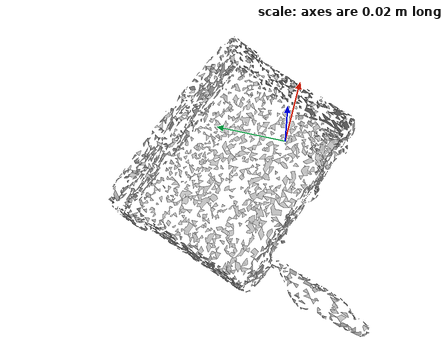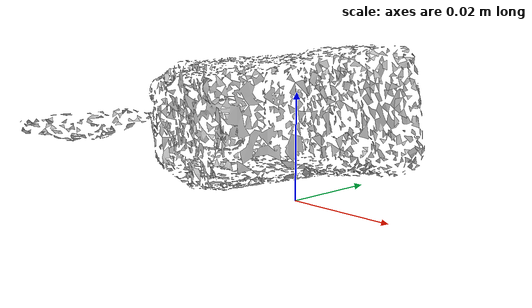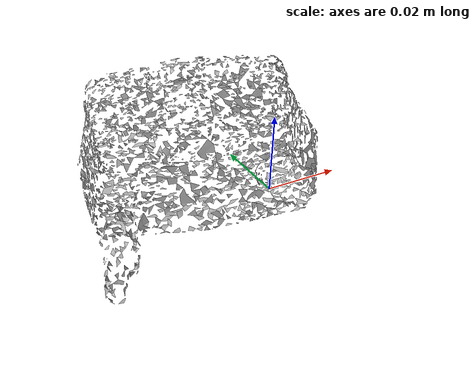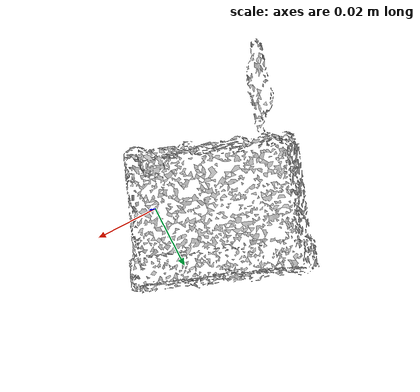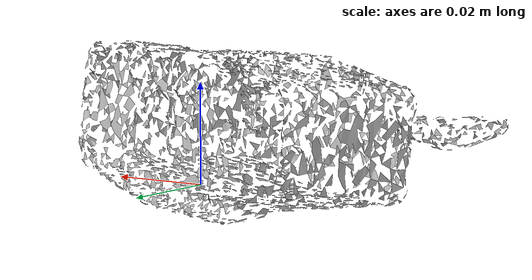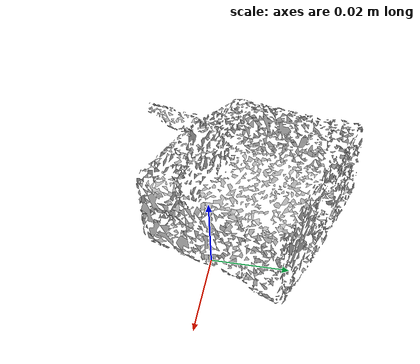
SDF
<?xml version='1.0'?>
<sdf version="1.4">
  <model name="padlock">
    <static>false</static>
    <link name="link">
      <inertial>
        <pose>-0.01707606691752894 0.00951738900221132 0.013626341524550546 2.927745012705898 -1.464562414265733 -3.127383472304368</pose>
        <mass>4.57020034268325e-05</mass>
        <inertia>
          <ixx>1.548488478544847e-08</ixx>
          <ixy>2.8991985493440624e-24</ixy>
          <ixz>-3.6896049559677124e-25</ixz>
          <iyy>1.1426254423194741e-08</iyy>
          <iyz>2.487050850367256e-25</iyz>
          <izz>8.409682265277153e-09</izz>
        </inertia>
      </inertial>
      <collision name="collision">
        <geometry>
          <mesh>
            <!-- Use a downsampled mesh for collisions -->
            <uri>model://038_padlock/downsampled.obj</uri>
	        </mesh>
        </geometry>
        <surface>
      </surface>
      </collision>
      <visual name="visual">
        <geometry>
          <mesh>
            <uri>model://038_padlock/google_16k/textured.obj</uri>
	        </mesh>
        </geometry>
        <material>
          <script>
            <uri>model://038_padlock/padlock.material</uri>
            <name>padlock</name>
          </script>
        </material>
      </visual>
    </link>
  </model>
</sdf>
